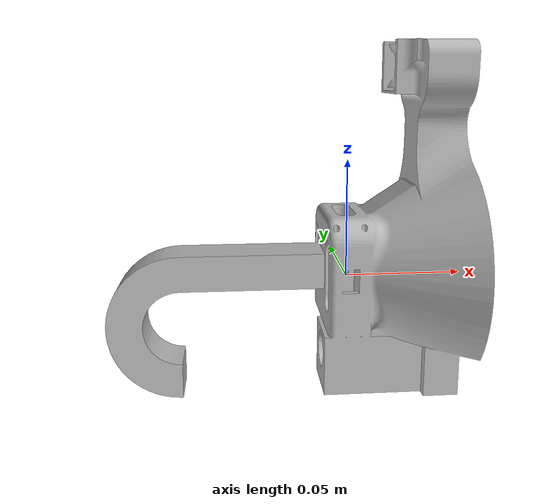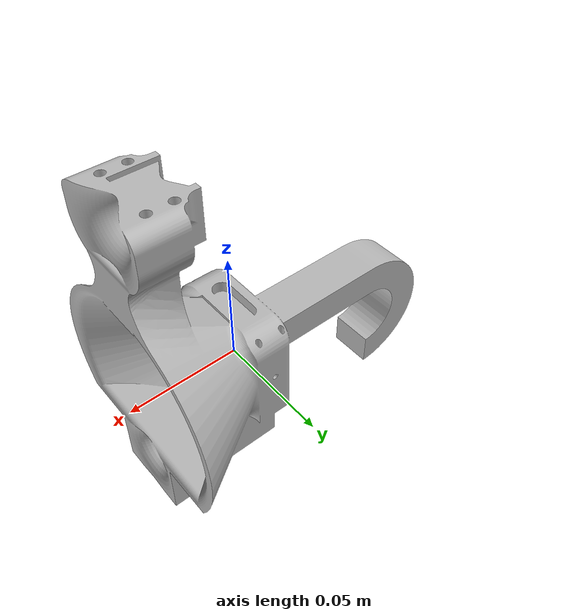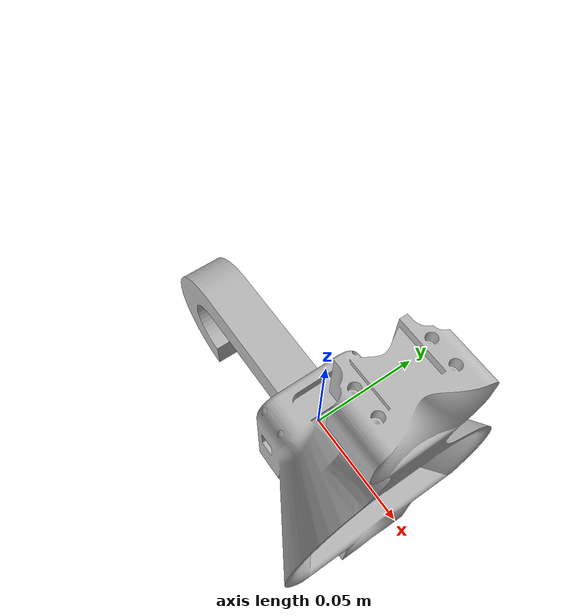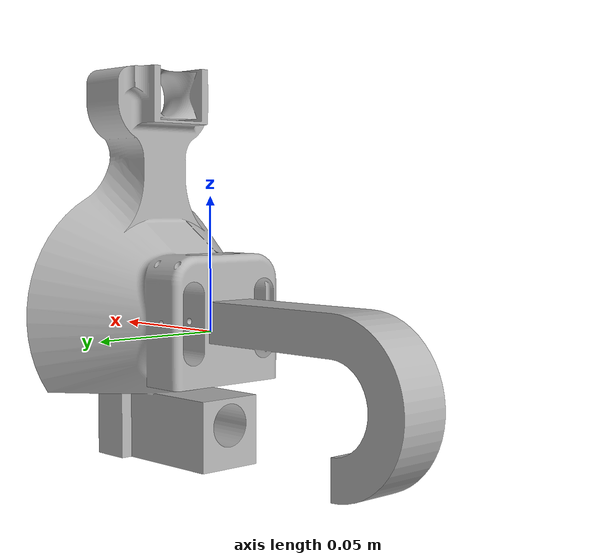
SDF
<?xml version="1.0"?>
<sdf version="1.7">

  <model name="hook">
    <!-- add_extra_module用接続位置 base_link to cog to model o 0.021+0.29056 0.001+0.00046 0.078+0.02746 -->
    <position>0.31156 0.00146 0.10546</position>

    <link name="hook_tool_link">
      <!-- Gazebo重心位置 -->
      <pose>-3.75e-3 0.03e-3 4.91e-3 0 0 0</pose>
      <inertial>
	<mass>0.15126</mass>

	<inertia>
	  <ixx>3.4559956e-4</ixx>
	  <ixy>2.503e-8</ixy>
	  <ixz>1.0952781e-4</ixz>

	  <iyy>5.980289e-4</iyy>
	  <iyz>-6.071e-8</iyz>

	  <izz>3.1629344e-4</izz>
	</inertia>
      </inertial>
      <visual name="visual">
        <geometry>
          <mesh>
            <uri>file:///home/newuser/ros/jsk_aerial_robot_ws/src/jsk_aerial_robot/robots/gimbalrotor/src/model/hook_tool.STL</uri>
            <scale>0.001 0.001 0.001</scale>
          </mesh>
        </geometry>
      </visual>

      <collision name="shaft_collision">
	<geometry>
          <mesh>
            <uri>file:///home/newuser/ros/jsk_aerial_robot_ws/src/jsk_aerial_robot/robots/gimbalrotor/src/model/hook_tool.STL</uri>
            <scale>0.001 0.001 0.001</scale>
          </mesh>
        </geometry>
      </collision>

    </link>

  </model>

</sdf>
